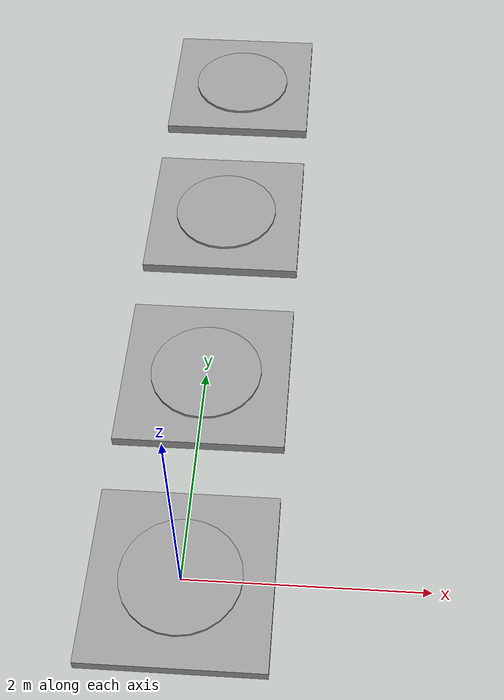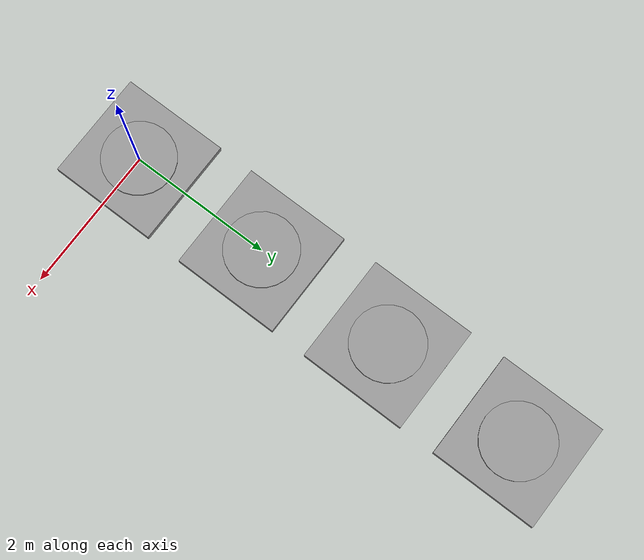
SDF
<sdf version="1.7">
 <world name="default">
  <include><uri>model://sun</uri></include>
  <model name="base_station_0"><include><uri>model://drone_station</uri></include></model>
  <model name="base_station_1">
   <include><uri>model://drone_station</uri></include>
   <pose>0 2 0 0 0 0</pose>
  </model>
  <model name="base_station_2">
   <include><uri>model://drone_station</uri></include>
   <pose>0 4 0 0 0 0</pose>
  </model>
  <model name="base_station_3">
   <include><uri>model://drone_station</uri></include>
   <pose>0 6 0 0 0 0</pose>
  </model>
  <plugin name="sd_world_plugin" filename="libsd_world_plugin.so">
   <ros><namespace>world</namespace></ros>
  </plugin>
 </world>
</sdf>

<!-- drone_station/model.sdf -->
<sdf version='1.7'>
  <model name='drone_station'>
    <link name='link_0'>
      <inertial>
        <mass>1</mass>
        <inertia>
          <ixx>0.166667</ixx>
          <ixy>0</ixy>
          <ixz>0</ixz>
          <iyy>0.166667</iyy>
          <iyz>0</iyz>
          <izz>0.166667</izz>
        </inertia>
        <pose>0 0 0 0 -0 0</pose>
      </inertial>
      <pose>0 0 0 0 -0 0</pose>
      <gravity>1</gravity>
      <self_collide>0</self_collide>
      <kinematic>0</kinematic>
      <enable_wind>0</enable_wind>
      <visual name='visual'>
        <pose>0 0 0 0 -0 0</pose>
        <geometry>
          <box>
            <size>1.5 1.5 0.1</size>
          </box>
        </geometry>
        <material>
          <lighting>1</lighting>
          <script>
            <uri>file://media/materials/scripts/gazebo.material</uri>
            <name>Gazebo/Grey</name>
          </script>
          <shader type='pixel'>
            <normal_map>__default__</normal_map>
          </shader>
          <ambient>0.2 0.2 0.2 1</ambient>
          <diffuse>0.2 0.2 0.2 1</diffuse>
          <specular>0.01 0.01 0.01 1</specular>
          <emissive>0 0 0 1</emissive>
        </material>
        <transparency>0</transparency>
        <cast_shadows>false</cast_shadows>
      </visual>
      <collision name='collision'>
        <laser_retro>0</laser_retro>
        <max_contacts>10</max_contacts>
        <pose>0 0 0 0 -0 0</pose>
        <geometry>
          <box>
            <size>1.5 1.5 0.1</size>
          </box>
        </geometry>
        <surface>
            <contact>
              <ode/>
            </contact>
            <bounce/>
            <friction>
              <torsional>
                <ode/>
              </torsional>
              <ode/>
            </friction>
          </surface>
      </collision>
    </link>
    <link name='link_1'>
      <inertial>
        <mass>1</mass>
        <inertia>
          <ixx>0.145833</ixx>
          <ixy>0</ixy>
          <ixz>0</ixz>
          <iyy>0.145833</iyy>
          <iyz>0</iyz>
          <izz>0.125</izz>
        </inertia>
        <pose>0 0 0 0 -0 0</pose>
      </inertial>
      <pose>0 0 0 0 -0 0</pose>
      <gravity>1</gravity>
      <self_collide>0</self_collide>
      <kinematic>0</kinematic>
      <enable_wind>0</enable_wind>
      <visual name='visual'>
        <pose>0 0 0 0 -0 0</pose>
        <geometry>
          <cylinder>
            <radius>0.5</radius>
            <length>0.15</length>
          </cylinder>
        </geometry>
        <material>
          <lighting>1</lighting>
          <script>
            <uri>file://media/materials/scripts/gazebo.material</uri>
            <name>Gazebo/Grey</name>
          </script>
          <shader type='pixel'>
            <normal_map>__default__</normal_map>
          </shader>
          <ambient>0.7 0.7 0.7 1</ambient>
          <diffuse>0.7 0.7 0.7 1</diffuse>
          <specular>0.01 0.01 0.01 1</specular>
          <emissive>0 0 0 1</emissive>
        </material>
        <transparency>0</transparency>
        <cast_shadows>1</cast_shadows>
      </visual>
      <collision name='collision'>
        <laser_retro>0</laser_retro>
        <max_contacts>10</max_contacts>
        <pose>0 0 0 0 -0 0</pose>
        <geometry>
          <cylinder>
            <radius>0.5</radius>
            <length>0.15</length>
          </cylinder>
        </geometry>
        <surface>
            <contact>
              <ode/>
            </contact>
            <bounce/>
            <friction>
              <torsional>
                <ode/>
              </torsional>
              <ode/>
            </friction>
          </surface>
      </collision>
    </link>
    <static>1</static>
    <allow_auto_disable>1</allow_auto_disable>
  </model>
</sdf>
